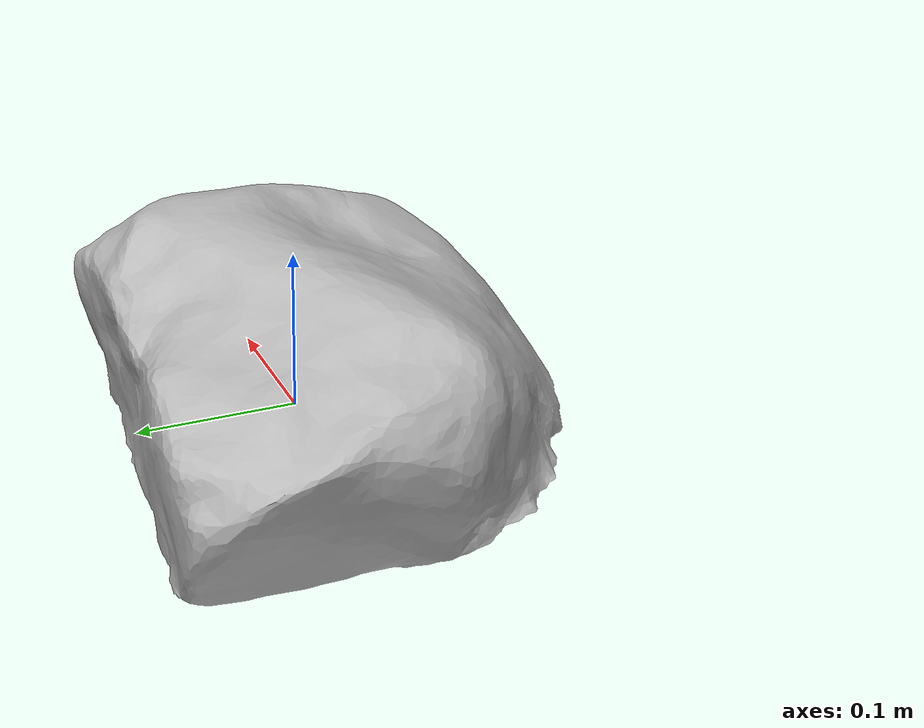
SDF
<?xml version="1.0" ?>
<sdf version="1.6">
    <model name="photoscanned-rock-03_2K_6669afd9-de42-4d31-9b27-ec4e7f815039">
        <static>true</static>
        <link name="link">
            <collision name="collision">
                <geometry>
                    <mesh>
                        <uri>model://rock/photoscanned-rock-03_2K_6669afd9-de42-4d31-9b27-ec4e7f815039/mesh/photoscanned-rock-03_2K_6669afd9-de42-4d31-9b27-ec4e7f815039_collision.dae</uri>
                    </mesh>
                </geometry>
            </collision>
            <visual name="visual">
                <geometry>
                    <mesh>
                        <uri>model://rock/photoscanned-rock-03_2K_6669afd9-de42-4d31-9b27-ec4e7f815039/mesh/photoscanned-rock-03_2K_6669afd9-de42-4d31-9b27-ec4e7f815039.dae</uri>
                    </mesh>
                </geometry>
                <material>
                    <script>
                        <uri>model://rock/photoscanned-rock-03_2K_6669afd9-de42-4d31-9b27-ec4e7f815039/materials/photoscanned-rock-03_2K_6669afd9-de42-4d31-9b27-ec4e7f815039.material</uri>
                        <name>photoscanned-rock-03_2K_6669afd9-de42-4d31-9b27-ec4e7f815039</name>
                    </script>
                </material>
            </visual>
        </link>
    </model>
</sdf>
